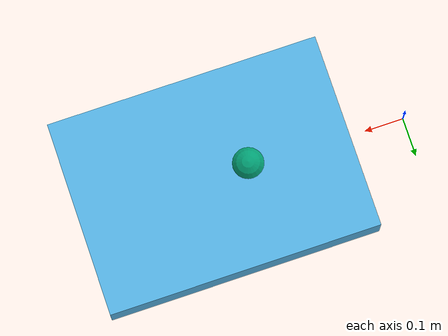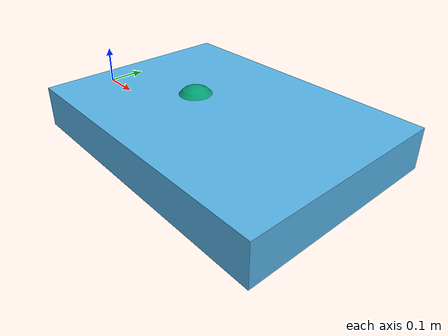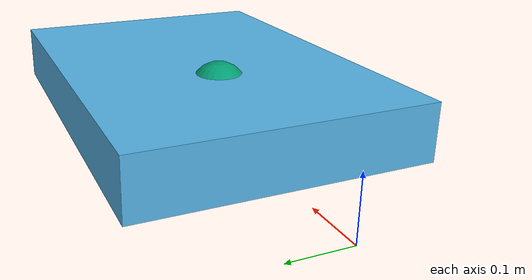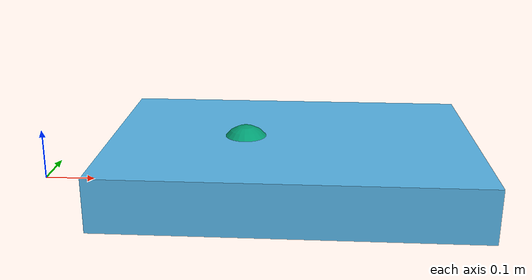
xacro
<robot
  name="box_circle" xmlns:xacro="http://www.ros.org/wiki/xacro">

  <xacro:include filename="$(find bionicarm_description)/urdf/materials.xacro" />

  <gazebo reference="box">
    <visual name='visual'>
     <material>
       <script>
         <uri>file://media/materials/scripts/gazebo.material</uri>
         <name>Gazebo/Orange</name>
       </script>
     </material>
    </visual>
  </gazebo>

  <gazebo reference="circle">
    <visual name='visual'>
     <material>
       <script>
         <uri>file://media/materials/scripts/gazebo.material</uri>
         <name>Gazebo/Red</name>
       </script>
     </material>
    </visual>
  </gazebo>

  <link name="world"/>

  <joint name="world_base" type="fixed">
    <origin
      xyz="0 0 0"
      rpy="0 0 0" />
    <parent
      link="world" />
    <child
      link="box" />
  </joint>

  <link name="box">
    <static> true </static>

    <visual>
      <origin xyz="0.5 0 0.05" rpy="0 0 0" />
      <geometry>
         <box size="0.7 0.5 0.1"/>
      </geometry>
    </visual>

    <collision>
      <origin xyz="0.5 0 0.05" rpy="0 0 0" />
      <geometry>
         <box size="0.7 0.5 0.1"/>
      </geometry>
    </collision>

    <inertial>
      <mass value="20" />
      <origin xyz="0 0 0" rpy="0 0 0"/>
      <inertia ixx="0.1" ixy="0" ixz="0" iyy="0.1" iyz="0" izz="0.1" />
    </inertial>
  </link>

   <link name="circle">
    <collision>
      <origin xyz="0.41 0 0.07" rpy="0 0 0"/>
      <geometry>
        <sphere radius="0.05"/>
      </geometry>
    </collision>

    <visual>
      <origin xyz="0.41 0 0.07" rpy="0 0 0" />
      <geometry>
        <sphere radius="0.05"/>
      </geometry>
    </visual>

    <inertial>
      <mass value="20" />
      <origin xyz="0 0 0" rpy="0 0 0"/>
      <inertia ixx="0.01" ixy="0" ixz="0" iyy="0.01" iyz="0" izz="0.01" />
    </inertial>
  </link>

  <joint name="circle_joint" type="fixed">
    <parent link="box"/>
    <child link="circle"/>
    <origin xyz="0.0 0.0 0.0" rpy="0 0 0" />
  </joint>

</robot>
